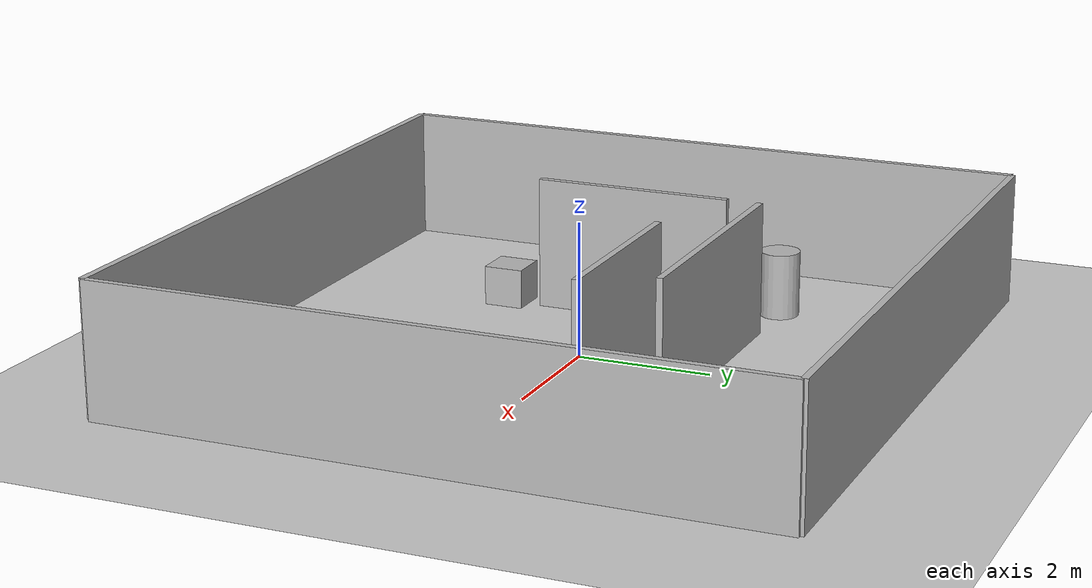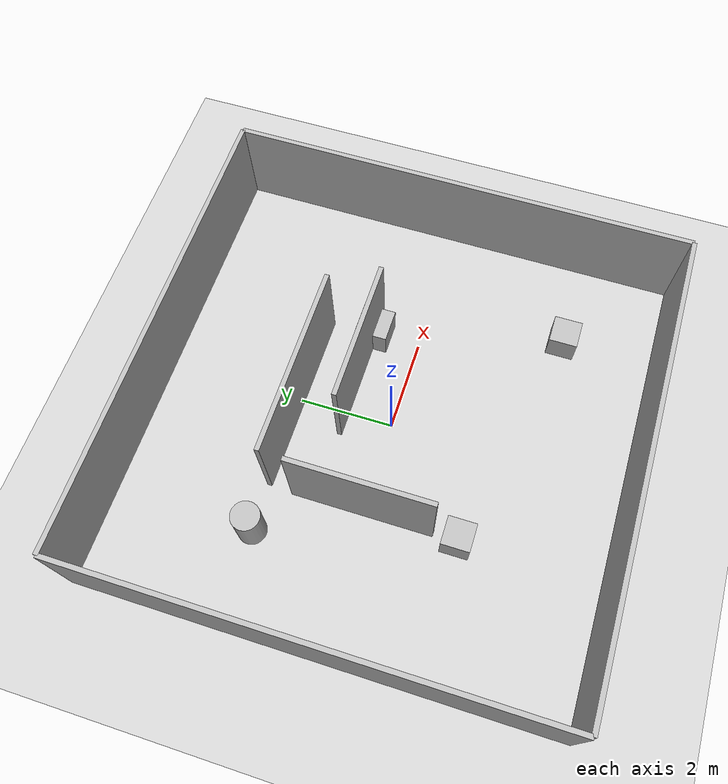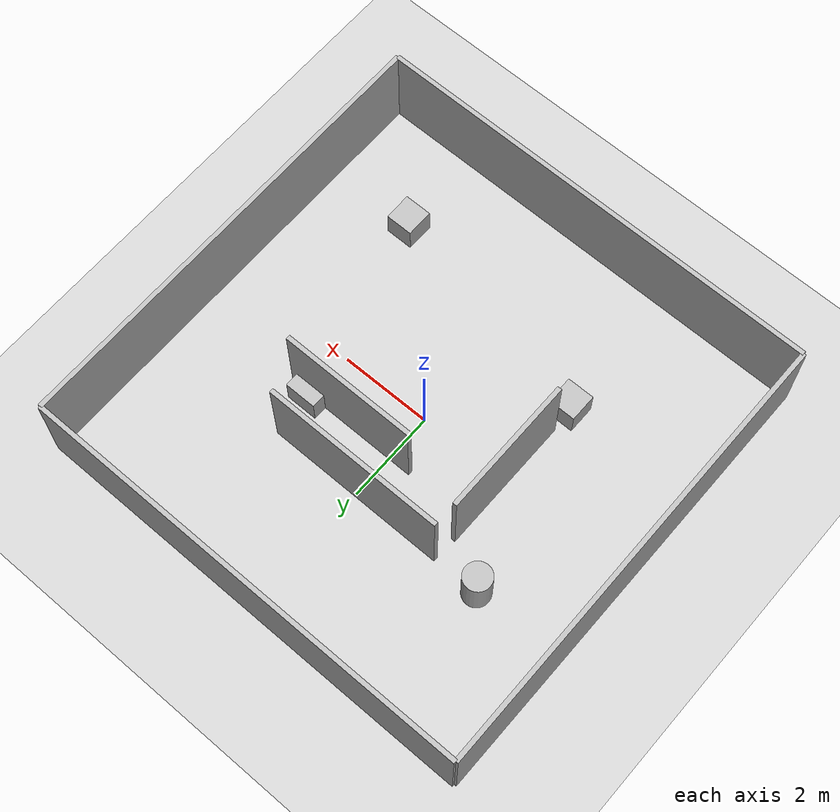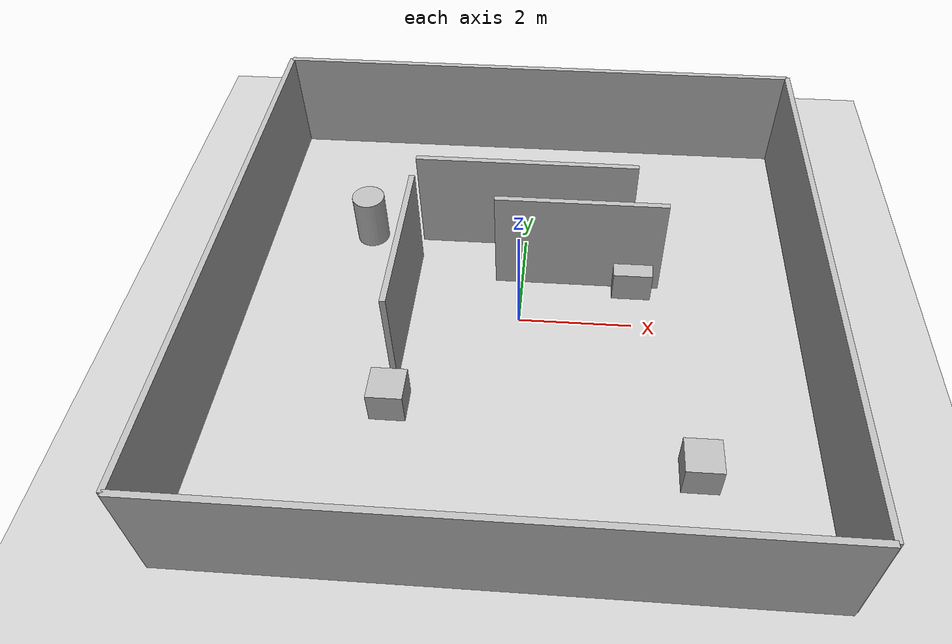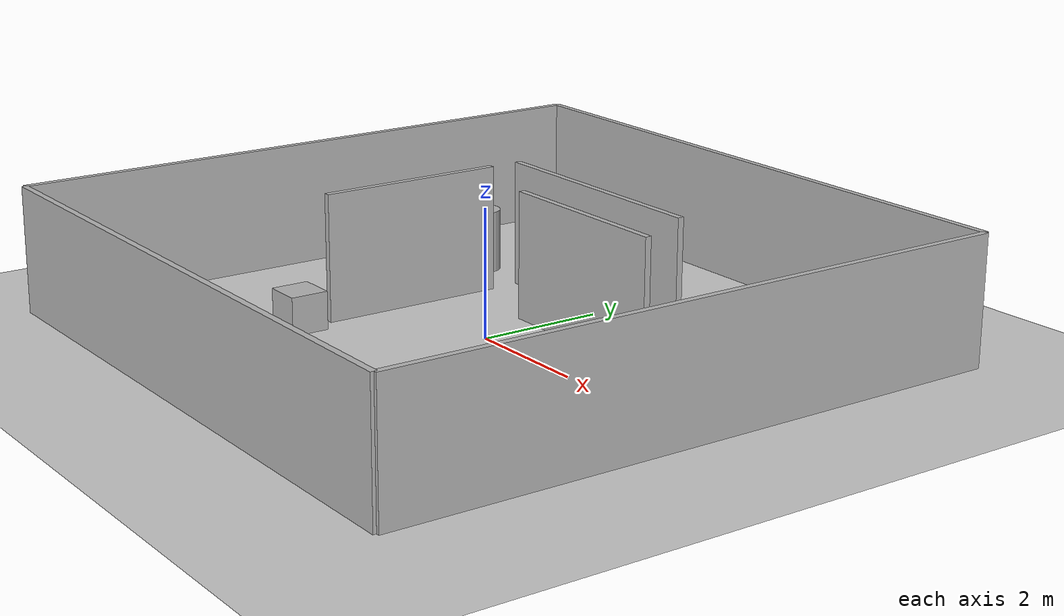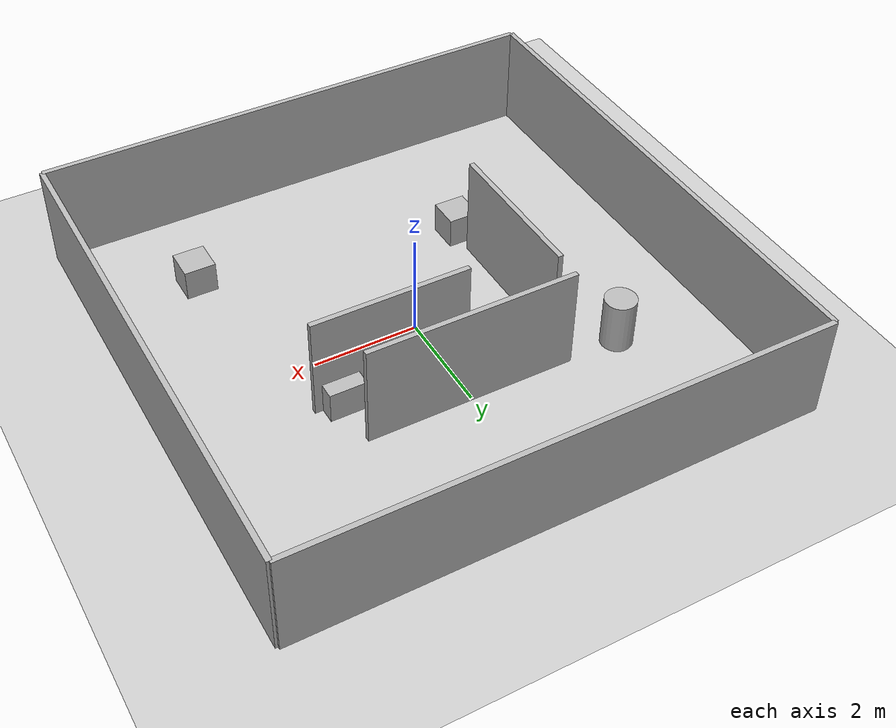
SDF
<?xml version="1.0"?>
<sdf version="1.9">
  <world name="indoor">
    <physics name="1ms" type="ignored">
      <max_step_size>0.001</max_step_size>
      <real_time_factor>1.0</real_time_factor>
    </physics>
    <plugin filename="gz-sim-physics-system" name="gz::sim::systems::Physics"/>
    <plugin filename="gz-sim-user-commands-system" name="gz::sim::systems::UserCommands"/>
    <plugin filename="gz-sim-scene-broadcaster-system" name="gz::sim::systems::SceneBroadcaster"/>
    <plugin filename="gz-sim-sensors-system" name="gz::sim::systems::Sensors">
      <render_engine>ogre2</render_engine>
    </plugin>

    <light type="directional" name="sun">
      <cast_shadows>true</cast_shadows>
      <pose>0 0 10 0 0 0</pose>
      <diffuse>0.8 0.8 0.8 1</diffuse>
      <direction>-0.5 0.1 -0.9</direction>
    </light>

    <model name="ground_plane">
      <static>true</static>
      <link name="link">
        <collision name="c"><geometry><plane><normal>0 0 1</normal><size>50 50</size></plane></geometry></collision>
        <visual name="v"><geometry><plane><normal>0 0 1</normal><size>50 50</size></plane></geometry>
          <material><ambient>0.8 0.8 0.8 1</ambient><diffuse>0.8 0.8 0.8 1</diffuse></material>
        </visual>
      </link>
    </model>

    <!-- Walls forming a 10x10 room with an inner partition -->
    <model name="wall_n"><static>true</static><pose>0 5 1 0 0 0</pose>
      <link name="l"><collision name="c"><geometry><box><size>10 0.1 2</size></box></geometry></collision>
      <visual name="v"><geometry><box><size>10 0.1 2</size></box></geometry></visual></link></model>
    <model name="wall_s"><static>true</static><pose>0 -5 1 0 0 0</pose>
      <link name="l"><collision name="c"><geometry><box><size>10 0.1 2</size></box></geometry></collision>
      <visual name="v"><geometry><box><size>10 0.1 2</size></box></geometry></visual></link></model>
    <model name="wall_e"><static>true</static><pose>5 0 1 0 0 0</pose>
      <link name="l"><collision name="c"><geometry><box><size>0.1 10 2</size></box></geometry></collision>
      <visual name="v"><geometry><box><size>0.1 10 2</size></box></geometry></visual></link></model>
    <model name="wall_w"><static>true</static><pose>-5 0 1 0 0 0</pose>
      <link name="l"><collision name="c"><geometry><box><size>0.1 10 2</size></box></geometry></collision>
      <visual name="v"><geometry><box><size>0.1 10 2</size></box></geometry></visual></link></model>

    <model name="partition"><static>true</static><pose>1 1 1 0 0 0</pose>
      <link name="l"><collision name="c"><geometry><box><size>3 0.1 2</size></box></geometry></collision>
      <visual name="v"><geometry><box><size>3 0.1 2</size></box></geometry></visual></link></model>

    <model name="box1"><static>true</static><pose>-2 -2 0.3 0 0 0</pose>
      <link name="l"><collision name="c"><geometry><box><size>0.6 0.6 0.6</size></box></geometry></collision>
      <visual name="v"><geometry><box><size>0.6 0.6 0.6</size></box></geometry></visual></link></model>
    <model name="box2"><static>true</static><pose>3 -3 0.3 0 0 0</pose>
      <link name="l"><collision name="c"><geometry><box><size>0.6 0.6 0.6</size></box></geometry></collision>
      <visual name="v"><geometry><box><size>0.6 0.6 0.6</size></box></geometry></visual></link></model>

    <!-- Extra partition wall (room-like) -->
<model name="extra_wall1">
  <static>true</static>
  <pose>0 2 1 0 0 0</pose>
  <link name="l">
    <collision name="c">
      <geometry><box><size>4 0.1 2</size></box></geometry>
    </collision>
    <visual name="v">
      <geometry><box><size>4 0.1 2</size></box></geometry>
    </visual>
  </link>
</model>

<!-- Small divider -->
<model name="extra_wall2">
  <static>true</static>
  <pose>-2 0 1 0 0 0</pose>
  <link name="l">
    <collision name="c">
      <geometry><box><size>0.1 3 2</size></box></geometry>
    </collision>
    <visual name="v">
      <geometry><box><size>0.1 3 2</size></box></geometry>
    </visual>
  </link>
</model>

<!-- Furniture -->
<model name="table3">
  <static>true</static>
  <pose>2 1 0.3 0 0 0</pose>
  <link name="l">
    <collision name="c">
      <geometry><box><size>0.7 0.7 0.6</size></box></geometry>
    </collision>
    <visual name="v">
      <geometry><box><size>0.7 0.7 0.6</size></box></geometry>
    </visual>
  </link>
</model>

<!-- Pillar -->
<model name="pillar2">
  <static>true</static>
  <pose>-3 2 0.5 0 0 0</pose>
  <link name="l">
    <collision name="c">
      <geometry><cylinder><radius>0.3</radius><length>1</length></cylinder></geometry>
    </collision>
    <visual name="v">
      <geometry><cylinder><radius>0.3</radius><length>1</length></cylinder></geometry>
    </visual>
  </link>
</model>
  </world>
</sdf>
